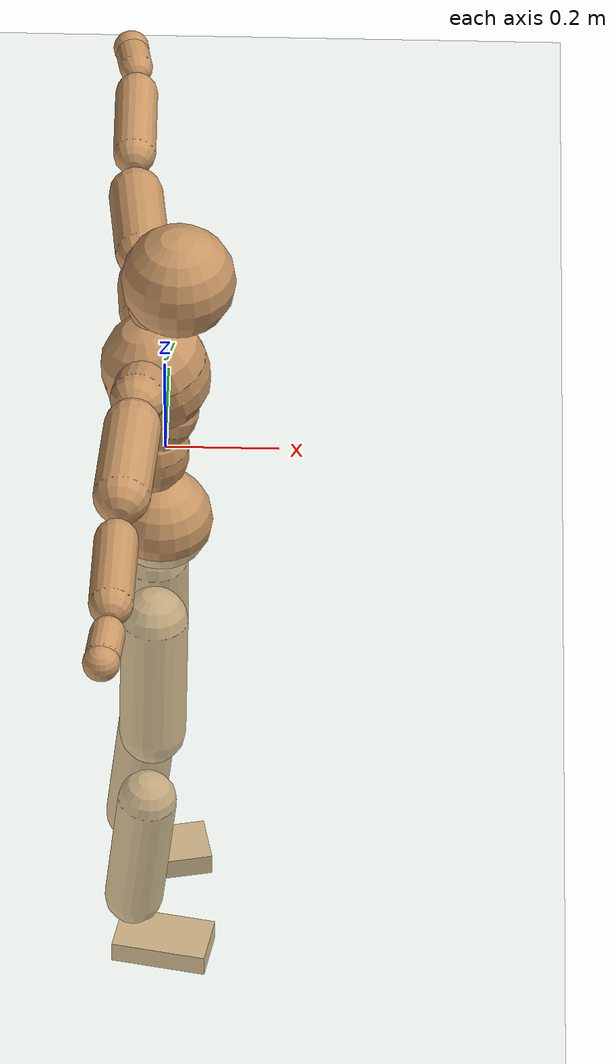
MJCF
<mujoco model="humanoid">
  <compiler coordinate="local" angle="radian"/>
  <default>
    <joint damping="0.0" armature="0.01" stiffness="0.0" limited="true"/>
    <geom conaffinity="1" condim="3" contype="7" margin="0.001" rgba="0.8 0.6 .4 1"/>
  </default>
  <asset>
    <texture type="skybox" builtin="gradient" rgb1=".4 .5 .6" rgb2="0 0 0" width="100" height="100"/>
    <texture builtin="flat" height="1278" mark="cross" markrgb="1 1 1" name="texgeom" random="0.01" rgb1="0.8 0.6 0.4" rgb2="0.8 0.6 0.4" type="cube" width="127"/>
    <texture builtin="checker" height="100" name="texplane" rgb1="0 0 0" rgb2="0.8 0.8 0.8" type="2d" width="100"/>
    <material name="MatPlane" reflectance="0.5" shininess="1" specular="1" texrepeat="60 60" texture="texplane"/>
    <material name="geom" texture="texgeom" texuniform="true"/>
  </asset>
  <worldbody>
    <light cutoff="100" diffuse="1 1 1" dir="-0 0 -1.3" directional="true" exponent="1" pos="0 0 1.3" specular=".1 .1 .1"/>
    <geom conaffinity="1" condim="3" name="floor" pos="0 0 0" rgba="0.8 0.9 0.8 1" size="100 100 .2" type="plane" material="MatPlane"/>
    <body name="Pelvis" pos="-0.0016 -0.1989 0.019">
      <freejoint name="Pelvis"/>
      <geom type="sphere" contype="1" conaffinity="1" density="500" size="0.0907" pos="0.0000 0.0000 0.0000" name="Pelvis"/>
      <body name="L_Hip" pos="-0.0133 0.0709 -0.0911">
        <joint name="L_Hip_x" type="hinge" pos="0 0 0" axis="1 0 0" stiffness="800" damping="80" armature="0.02" range="-180.0000 180.0000"/>
        <joint name="L_Hip_y" type="hinge" pos="0 0 0" axis="0 1 0" stiffness="800" damping="80" armature="0.02" range="-180.0000 180.0000"/>
        <joint name="L_Hip_z" type="hinge" pos="0 0 0" axis="0 0 1" stiffness="800" damping="80" armature="0.02" range="-180.0000 180.0000"/>
        <geom type="capsule" contype="1" conaffinity="1" density="500" fromto="-0.0006 0.0077 -0.0819 -0.0025 0.0306 -0.3276" size="0.0599" name="L_Hip"/>
        <body name="L_Knee" pos="-0.0031 0.0383 -0.4095">
          <joint name="L_Knee_x" type="hinge" pos="0 0 0" axis="1 0 0" stiffness="800" damping="80" armature="0.02" range="-180.0000 180.0000"/>
          <joint name="L_Knee_y" type="hinge" pos="0 0 0" axis="0 1 0" stiffness="800" damping="80" armature="0.02" range="-180.0000 180.0000"/>
          <joint name="L_Knee_z" type="hinge" pos="0 0 0" axis="0 0 1" stiffness="800" damping="80" armature="0.02" range="-180.0000 180.0000"/>
          <geom type="capsule" contype="1" conaffinity="1" density="500" fromto="-0.0092 -0.0025 -0.0868 -0.0367 -0.0100 -0.3472" size="0.0524" name="L_Knee"/>
          <body name="L_Ankle" pos="-0.0459 -0.0125 -0.434">
            <joint name="L_Ankle_x" type="hinge" pos="0 0 0" axis="1 0 0" stiffness="800" damping="80" armature="0.02" range="-180.0000 180.0000"/>
            <joint name="L_Ankle_y" type="hinge" pos="0 0 0" axis="0 1 0" stiffness="800" damping="80" armature="0.02" range="-180.0000 180.0000"/>
            <joint name="L_Ankle_z" type="hinge" pos="0 0 0" axis="0 0 1" stiffness="800" damping="80" armature="0.02" range="-180.0000 180.0000"/>
            <geom type="box" contype="1" conaffinity="1" density="500" pos="0.0596 0.0120 -0.0302" size="0.0831 0.0453 0.0218" quat="0.9951 0.0000 0.0000 0.0989" name="L_Ankle"/>
            <body name="L_Toe" pos="0.1192 0.0239 -0.0604">
              <joint name="L_Toe_x" type="hinge" pos="0 0 0" axis="1 0 0" stiffness="500" damping="50" armature="0.02" range="-180.0000 180.0000"/>
              <joint name="L_Toe_y" type="hinge" pos="0 0 0" axis="0 1 0" stiffness="500" damping="50" armature="0.02" range="-180.0000 180.0000"/>
              <joint name="L_Toe_z" type="hinge" pos="0 0 0" axis="0 0 1" stiffness="500" damping="50" armature="0.02" range="-180.0000 180.0000"/>
              <geom type="box" contype="1" conaffinity="1" density="500" pos="0.0000 0.0000 0.0296" size="0.0009 0.0023 0.0011" quat="0.9945 0.0000 0.0000 0.1052" name="L_Toe"/>
            </body>
          </body>
        </body>
      </body>
      <body name="R_Hip" pos="-0.0084 -0.0688 -0.0902">
        <joint name="R_Hip_x" type="hinge" pos="0 0 0" axis="1 0 0" stiffness="800" damping="80" armature="0.02" range="-180.0000 180.0000"/>
        <joint name="R_Hip_y" type="hinge" pos="0 0 0" axis="0 1 0" stiffness="800" damping="80" armature="0.02" range="-180.0000 180.0000"/>
        <joint name="R_Hip_z" type="hinge" pos="0 0 0" axis="0 0 1" stiffness="800" damping="80" armature="0.02" range="-180.0000 180.0000"/>
        <geom type="capsule" contype="1" conaffinity="1" density="500" fromto="-0.0012 -0.0091 -0.0833 -0.0049 -0.0365 -0.3333" size="0.059" name="R_Hip"/>
        <body name="R_Knee" pos="-0.0061 -0.0456 -0.4166">
          <joint name="R_Knee_x" type="hinge" pos="0 0 0" axis="1 0 0" stiffness="800" damping="80" armature="0.02" range="-180.0000 180.0000"/>
          <joint name="R_Knee_y" type="hinge" pos="0 0 0" axis="0 1 0" stiffness="800" damping="80" armature="0.02" range="-180.0000 180.0000"/>
          <joint name="R_Knee_z" type="hinge" pos="0 0 0" axis="0 0 1" stiffness="800" damping="80" armature="0.02" range="-180.0000 180.0000"/>
          <geom type="capsule" contype="1" conaffinity="1" density="500" fromto="-0.0085 0.0033 -0.0868 -0.0341 0.0130 -0.3472" size="0.0527" name="R_Knee"/>
          <body name="R_Ankle" pos="-0.0426 0.0163 -0.434">
            <joint name="R_Ankle_x" type="hinge" pos="0 0 0" axis="1 0 0" stiffness="800" damping="80" armature="0.02" range="-180.0000 180.0000"/>
            <joint name="R_Ankle_y" type="hinge" pos="0 0 0" axis="0 1 0" stiffness="800" damping="80" armature="0.02" range="-180.0000 180.0000"/>
            <joint name="R_Ankle_z" type="hinge" pos="0 0 0" axis="0 0 1" stiffness="800" damping="80" armature="0.02" range="-180.0000 180.0000"/>
            <geom type="box" contype="1" conaffinity="1" density="500" pos="0.0616 -0.0115 -0.0260" size="0.0856 0.0468 0.0212" quat="0.9958 0.0000 0.0000 -0.0920" name="R_Ankle"/>
            <body name="R_Toe" pos="0.1231 -0.0229 -0.0521">
              <joint name="R_Toe_x" type="hinge" pos="0 0 0" axis="1 0 0" stiffness="500" damping="50" armature="0.02" range="-180.0000 180.0000"/>
              <joint name="R_Toe_y" type="hinge" pos="0 0 0" axis="0 1 0" stiffness="500" damping="50" armature="0.02" range="-180.0000 180.0000"/>
              <joint name="R_Toe_z" type="hinge" pos="0 0 0" axis="0 0 1" stiffness="500" damping="50" armature="0.02" range="-180.0000 180.0000"/>
              <geom type="box" contype="1" conaffinity="1" density="500" pos="0.0000 0.0000 0.0282" size="0.0009 0.0023 0.0012" quat="0.9966 0.0000 0.0000 -0.0828" name="R_Toe"/>
            </body>
          </body>
        </body>
      </body>
      <body name="Torso" pos="-0.0172 -0.0026 0.1037">
        <joint name="Torso_x" type="hinge" pos="0 0 0" axis="1 0 0" stiffness="1000" damping="100" armature="0.02" range="-180.0000 180.0000"/>
        <joint name="Torso_y" type="hinge" pos="0 0 0" axis="0 1 0" stiffness="1000" damping="100" armature="0.02" range="-180.0000 180.0000"/>
        <joint name="Torso_z" type="hinge" pos="0 0 0" axis="0 0 1" stiffness="1000" damping="100" armature="0.02" range="-180.0000 180.0000"/>
        <geom type="capsule" contype="1" conaffinity="1" density="500" fromto="0.0006 0.0024 0.0756 0.0004 0.0016 0.0504" size="0.0665" name="Torso"/>
        <body name="Spine" pos="0.001 0.004 0.1261">
          <joint name="Spine_x" type="hinge" pos="0 0 0" axis="1 0 0" stiffness="1000" damping="100" armature="0.02" range="-180.0000 180.0000"/>
          <joint name="Spine_y" type="hinge" pos="0 0 0" axis="0 1 0" stiffness="1000" damping="100" armature="0.02" range="-180.0000 180.0000"/>
          <joint name="Spine_z" type="hinge" pos="0 0 0" axis="0 0 1" stiffness="1000" damping="100" armature="0.02" range="-180.0000 180.0000"/>
          <geom type="capsule" contype="1" conaffinity="1" density="500" fromto="0.0153 0.0010 0.0296 0.0102 0.0007 0.0197" size="0.068" name="Spine"/>
          <body name="Chest" pos="0.0255 0.0016 0.0493">
            <joint name="Chest_x" type="hinge" pos="0 0 0" axis="1 0 0" stiffness="1000" damping="100" armature="0.02" range="-180.0000 180.0000"/>
            <joint name="Chest_y" type="hinge" pos="0 0 0" axis="0 1 0" stiffness="1000" damping="100" armature="0.02" range="-180.0000 180.0000"/>
            <joint name="Chest_z" type="hinge" pos="0 0 0" axis="0 0 1" stiffness="1000" damping="100" armature="0.02" range="-180.0000 180.0000"/>
            <geom type="capsule" contype="1" conaffinity="1" density="500" fromto="-0.0210 -0.0014 0.0874 -0.0140 -0.0009 0.0583" size="0.0924" name="Chest"/>
            <body name="Neck" pos="-0.0356 -0.0047 0.2096">
              <joint name="Neck_x" type="hinge" pos="0 0 0" axis="1 0 0" stiffness="500" damping="50" armature="0.02" range="-180.0000 180.0000"/>
              <joint name="Neck_y" type="hinge" pos="0 0 0" axis="0 1 0" stiffness="500" damping="50" armature="0.02" range="-180.0000 180.0000"/>
              <joint name="Neck_z" type="hinge" pos="0 0 0" axis="0 0 1" stiffness="500" damping="50" armature="0.02" range="-180.0000 180.0000"/>
              <geom type="capsule" contype="1" conaffinity="1" density="500" fromto="0.0115 0.0009 0.0146 0.0460 0.0038 0.0585" size="0.0409" name="Neck"/>
              <body name="Head" pos="0.0576 0.0047 0.0731">
                <joint name="Head_x" type="hinge" pos="0 0 0" axis="1 0 0" stiffness="500" damping="50" armature="0.02" range="-180.0000 180.0000"/>
                <joint name="Head_y" type="hinge" pos="0 0 0" axis="0 1 0" stiffness="500" damping="50" armature="0.02" range="-180.0000 180.0000"/>
                <joint name="Head_z" type="hinge" pos="0 0 0" axis="0 0 1" stiffness="500" damping="50" armature="0.02" range="-180.0000 180.0000"/>
                <geom type="sphere" contype="1" conaffinity="1" density="500" size="0.0984" pos="0.0000 0.0000 0.0000" name="Head"/>
              </body>
            </body>
            <body name="L_Thorax" pos="-0.0327 0.076 0.1145">
              <joint name="L_Thorax_x" type="hinge" pos="0 0 0" axis="1 0 0" stiffness="500" damping="50" armature="0.02" range="-180.0000 180.0000"/>
              <joint name="L_Thorax_y" type="hinge" pos="0 0 0" axis="0 1 0" stiffness="500" damping="50" armature="0.02" range="-180.0000 180.0000"/>
              <joint name="L_Thorax_z" type="hinge" pos="0 0 0" axis="0 0 1" stiffness="500" damping="50" armature="0.02" range="-180.0000 180.0000"/>
              <geom type="capsule" contype="1" conaffinity="1" density="500" fromto="-0.0016 0.0169 0.0068 -0.0064 0.0678 0.0273" size="0.049" name="L_Thorax"/>
              <body name="L_Shoulder" pos="-0.0081 0.0847 0.0342">
                <joint name="L_Shoulder_x" type="hinge" pos="0 0 0" axis="1 0 0" stiffness="500" damping="50" armature="0.02" range="-720.0000 720.0000"/>
                <joint name="L_Shoulder_y" type="hinge" pos="0 0 0" axis="0 1 0" stiffness="500" damping="50" armature="0.02" range="-720.0000 720.0000"/>
                <joint name="L_Shoulder_z" type="hinge" pos="0 0 0" axis="0 0 1" stiffness="500" damping="50" armature="0.02" range="-720.0000 720.0000"/>
                <geom type="capsule" contype="1" conaffinity="1" density="500" fromto="-0.0057 0.0547 -0.0036 -0.0227 0.2190 -0.0144" size="0.0475" name="L_Shoulder"/>
                <body name="L_Elbow" pos="-0.0283 0.2737 -0.018">
                  <joint name="L_Elbow_x" type="hinge" pos="0 0 0" axis="1 0 0" stiffness="500" damping="50" armature="0.02" range="-720.0000 720.0000"/>
                  <joint name="L_Elbow_y" type="hinge" pos="0 0 0" axis="0 1 0" stiffness="500" damping="50" armature="0.02" range="-720.0000 720.0000"/>
                  <joint name="L_Elbow_z" type="hinge" pos="0 0 0" axis="0 0 1" stiffness="500" damping="50" armature="0.02" range="-720.0000 720.0000"/>
                  <geom type="capsule" contype="1" conaffinity="1" density="500" fromto="-0.0004 0.0507 0.0023 -0.0014 0.2027 0.0091" size="0.0374" name="L_Elbow"/>
                  <body name="L_Wrist" pos="-0.0018 0.2533 0.0114">
                    <joint name="L_Wrist_x" type="hinge" pos="0 0 0" axis="1 0 0" stiffness="300" damping="30" armature="0.02" range="-180.0000 180.0000"/>
                    <joint name="L_Wrist_y" type="hinge" pos="0 0 0" axis="0 1 0" stiffness="300" damping="30" armature="0.02" range="-180.0000 180.0000"/>
                    <joint name="L_Wrist_z" type="hinge" pos="0 0 0" axis="0 0 1" stiffness="300" damping="30" armature="0.02" range="-180.0000 180.0000"/>
                    <geom type="capsule" contype="1" conaffinity="1" density="500" fromto="-0.0026 0.0157 -0.0020 -0.0105 0.0627 -0.0078" size="0.0293" name="L_Wrist"/>
                    <body name="L_Hand" pos="-0.0132 0.0784 -0.0098">
                      <joint name="L_Hand_x" type="hinge" pos="0 0 0" axis="1 0 0" stiffness="300" damping="30" armature="0.02" range="-180.0000 180.0000"/>
                      <joint name="L_Hand_y" type="hinge" pos="0 0 0" axis="0 1 0" stiffness="300" damping="30" armature="0.02" range="-180.0000 180.0000"/>
                      <joint name="L_Hand_z" type="hinge" pos="0 0 0" axis="0 0 1" stiffness="300" damping="30" armature="0.02" range="-180.0000 180.0000"/>
                      <geom type="sphere" contype="1" conaffinity="1" density="500" size="0.0315" pos="0.0000 0.0000 0.0000" name="L_Hand"/>
                    </body>
                  </body>
                </body>
              </body>
            </body>
            <body name="R_Thorax" pos="-0.0368 -0.0782 0.1128">
              <joint name="R_Thorax_x" type="hinge" pos="0 0 0" axis="1 0 0" stiffness="500" damping="50" armature="0.02" range="-180.0000 180.0000"/>
              <joint name="R_Thorax_y" type="hinge" pos="0 0 0" axis="0 1 0" stiffness="500" damping="50" armature="0.02" range="-180.0000 180.0000"/>
              <joint name="R_Thorax_z" type="hinge" pos="0 0 0" axis="0 0 1" stiffness="500" damping="50" armature="0.02" range="-180.0000 180.0000"/>
              <geom type="capsule" contype="1" conaffinity="1" density="500" fromto="-0.0018 -0.0173 0.0072 -0.0074 -0.0691 0.0290" size="0.0475" name="R_Thorax"/>
              <body name="R_Shoulder" pos="-0.0092 -0.0864 0.0362">
                <joint name="R_Shoulder_x" type="hinge" pos="0 0 0" axis="1 0 0" stiffness="500" damping="50" armature="0.02" range="-720.0000 720.0000"/>
                <joint name="R_Shoulder_y" type="hinge" pos="0 0 0" axis="0 1 0" stiffness="500" damping="50" armature="0.02" range="-720.0000 720.0000"/>
                <joint name="R_Shoulder_z" type="hinge" pos="0 0 0" axis="0 0 1" stiffness="500" damping="50" armature="0.02" range="-720.0000 720.0000"/>
                <geom type="capsule" contype="1" conaffinity="1" density="500" fromto="-0.0043 -0.0525 -0.0035 -0.0173 -0.2098 -0.0141" size="0.0492" name="R_Shoulder"/>
                <body name="R_Elbow" pos="-0.0217 -0.2623 -0.0177">
                  <joint name="R_Elbow_x" type="hinge" pos="0 0 0" axis="1 0 0" stiffness="500" damping="50" armature="0.02" range="-720.0000 720.0000"/>
                  <joint name="R_Elbow_y" type="hinge" pos="0 0 0" axis="0 1 0" stiffness="500" damping="50" armature="0.02" range="-720.0000 720.0000"/>
                  <joint name="R_Elbow_z" type="hinge" pos="0 0 0" axis="0 0 1" stiffness="500" damping="50" armature="0.02" range="-720.0000 720.0000"/>
                  <geom type="capsule" contype="1" conaffinity="1" density="500" fromto="-0.0012 -0.0522 0.0018 -0.0048 -0.2086 0.0073" size="0.0378" name="R_Elbow"/>
                  <body name="R_Wrist" pos="-0.006 -0.2608 0.0091">
                    <joint name="R_Wrist_x" type="hinge" pos="0 0 0" axis="1 0 0" stiffness="300" damping="30" armature="0.02" range="-180.0000 180.0000"/>
                    <joint name="R_Wrist_y" type="hinge" pos="0 0 0" axis="0 1 0" stiffness="300" damping="30" armature="0.02" range="-180.0000 180.0000"/>
                    <joint name="R_Wrist_z" type="hinge" pos="0 0 0" axis="0 0 1" stiffness="300" damping="30" armature="0.02" range="-180.0000 180.0000"/>
                    <geom type="capsule" contype="1" conaffinity="1" density="500" fromto="-0.0020 -0.0157 -0.0015 -0.0081 -0.0630 -0.0058" size="0.0299" name="R_Wrist"/>
                    <body name="R_Hand" pos="-0.0101 -0.0787 -0.0073">
                      <joint name="R_Hand_x" type="hinge" pos="0 0 0" axis="1 0 0" stiffness="300" damping="30" armature="0.02" range="-180.0000 180.0000"/>
                      <joint name="R_Hand_y" type="hinge" pos="0 0 0" axis="0 1 0" stiffness="300" damping="30" armature="0.02" range="-180.0000 180.0000"/>
                      <joint name="R_Hand_z" type="hinge" pos="0 0 0" axis="0 0 1" stiffness="300" damping="30" armature="0.02" range="-180.0000 180.0000"/>
                      <geom type="sphere" contype="1" conaffinity="1" density="500" size="0.0316" pos="0.0000 0.0000 0.0000" name="R_Hand"/>
                    </body>
                  </body>
                </body>
              </body>
            </body>
          </body>
        </body>
      </body>
    </body>
  </worldbody>
  <actuator>
    <motor name="L_Hip_x" joint="L_Hip_x" gear="500"/>
    <motor name="L_Hip_y" joint="L_Hip_y" gear="500"/>
    <motor name="L_Hip_z" joint="L_Hip_z" gear="500"/>
    <motor name="L_Knee_x" joint="L_Knee_x" gear="500"/>
    <motor name="L_Knee_y" joint="L_Knee_y" gear="500"/>
    <motor name="L_Knee_z" joint="L_Knee_z" gear="500"/>
    <motor name="L_Ankle_x" joint="L_Ankle_x" gear="500"/>
    <motor name="L_Ankle_y" joint="L_Ankle_y" gear="500"/>
    <motor name="L_Ankle_z" joint="L_Ankle_z" gear="500"/>
    <motor name="L_Toe_x" joint="L_Toe_x" gear="500"/>
    <motor name="L_Toe_y" joint="L_Toe_y" gear="500"/>
    <motor name="L_Toe_z" joint="L_Toe_z" gear="500"/>
    <motor name="R_Hip_x" joint="R_Hip_x" gear="500"/>
    <motor name="R_Hip_y" joint="R_Hip_y" gear="500"/>
    <motor name="R_Hip_z" joint="R_Hip_z" gear="500"/>
    <motor name="R_Knee_x" joint="R_Knee_x" gear="500"/>
    <motor name="R_Knee_y" joint="R_Knee_y" gear="500"/>
    <motor name="R_Knee_z" joint="R_Knee_z" gear="500"/>
    <motor name="R_Ankle_x" joint="R_Ankle_x" gear="500"/>
    <motor name="R_Ankle_y" joint="R_Ankle_y" gear="500"/>
    <motor name="R_Ankle_z" joint="R_Ankle_z" gear="500"/>
    <motor name="R_Toe_x" joint="R_Toe_x" gear="500"/>
    <motor name="R_Toe_y" joint="R_Toe_y" gear="500"/>
    <motor name="R_Toe_z" joint="R_Toe_z" gear="500"/>
    <motor name="Torso_x" joint="Torso_x" gear="500"/>
    <motor name="Torso_y" joint="Torso_y" gear="500"/>
    <motor name="Torso_z" joint="Torso_z" gear="500"/>
    <motor name="Spine_x" joint="Spine_x" gear="500"/>
    <motor name="Spine_y" joint="Spine_y" gear="500"/>
    <motor name="Spine_z" joint="Spine_z" gear="500"/>
    <motor name="Chest_x" joint="Chest_x" gear="500"/>
    <motor name="Chest_y" joint="Chest_y" gear="500"/>
    <motor name="Chest_z" joint="Chest_z" gear="500"/>
    <motor name="Neck_x" joint="Neck_x" gear="500"/>
    <motor name="Neck_y" joint="Neck_y" gear="500"/>
    <motor name="Neck_z" joint="Neck_z" gear="500"/>
    <motor name="Head_x" joint="Head_x" gear="500"/>
    <motor name="Head_y" joint="Head_y" gear="500"/>
    <motor name="Head_z" joint="Head_z" gear="500"/>
    <motor name="L_Thorax_x" joint="L_Thorax_x" gear="500"/>
    <motor name="L_Thorax_y" joint="L_Thorax_y" gear="500"/>
    <motor name="L_Thorax_z" joint="L_Thorax_z" gear="500"/>
    <motor name="L_Shoulder_x" joint="L_Shoulder_x" gear="500"/>
    <motor name="L_Shoulder_y" joint="L_Shoulder_y" gear="500"/>
    <motor name="L_Shoulder_z" joint="L_Shoulder_z" gear="500"/>
    <motor name="L_Elbow_x" joint="L_Elbow_x" gear="500"/>
    <motor name="L_Elbow_y" joint="L_Elbow_y" gear="500"/>
    <motor name="L_Elbow_z" joint="L_Elbow_z" gear="500"/>
    <motor name="L_Wrist_x" joint="L_Wrist_x" gear="500"/>
    <motor name="L_Wrist_y" joint="L_Wrist_y" gear="500"/>
    <motor name="L_Wrist_z" joint="L_Wrist_z" gear="500"/>
    <motor name="L_Hand_x" joint="L_Hand_x" gear="500"/>
    <motor name="L_Hand_y" joint="L_Hand_y" gear="500"/>
    <motor name="L_Hand_z" joint="L_Hand_z" gear="500"/>
    <motor name="R_Thorax_x" joint="R_Thorax_x" gear="500"/>
    <motor name="R_Thorax_y" joint="R_Thorax_y" gear="500"/>
    <motor name="R_Thorax_z" joint="R_Thorax_z" gear="500"/>
    <motor name="R_Shoulder_x" joint="R_Shoulder_x" gear="500"/>
    <motor name="R_Shoulder_y" joint="R_Shoulder_y" gear="500"/>
    <motor name="R_Shoulder_z" joint="R_Shoulder_z" gear="500"/>
    <motor name="R_Elbow_x" joint="R_Elbow_x" gear="500"/>
    <motor name="R_Elbow_y" joint="R_Elbow_y" gear="500"/>
    <motor name="R_Elbow_z" joint="R_Elbow_z" gear="500"/>
    <motor name="R_Wrist_x" joint="R_Wrist_x" gear="500"/>
    <motor name="R_Wrist_y" joint="R_Wrist_y" gear="500"/>
    <motor name="R_Wrist_z" joint="R_Wrist_z" gear="500"/>
    <motor name="R_Hand_x" joint="R_Hand_x" gear="500"/>
    <motor name="R_Hand_y" joint="R_Hand_y" gear="500"/>
    <motor name="R_Hand_z" joint="R_Hand_z" gear="500"/>
  </actuator>
  <contact>
    <exclude body1="Torso" body2="Chest"/>
    <exclude body1="Head" body2="Chest"/>
    <exclude body1="R_Knee" body2="R_Toe"/>
    <exclude body1="R_Knee" body2="L_Ankle"/>
    <exclude body1="R_Knee" body2="L_Toe"/>
    <exclude body1="L_Knee" body2="L_Toe"/>
    <exclude body1="L_Knee" body2="R_Ankle"/>
    <exclude body1="L_Knee" body2="R_Toe"/>
    <exclude body1="L_Shoulder" body2="Chest"/>
    <exclude body1="R_Shoulder" body2="Chest"/>
  </contact>
  <sensor/>
  <size njmax="700" nconmax="700"/>
</mujoco>
